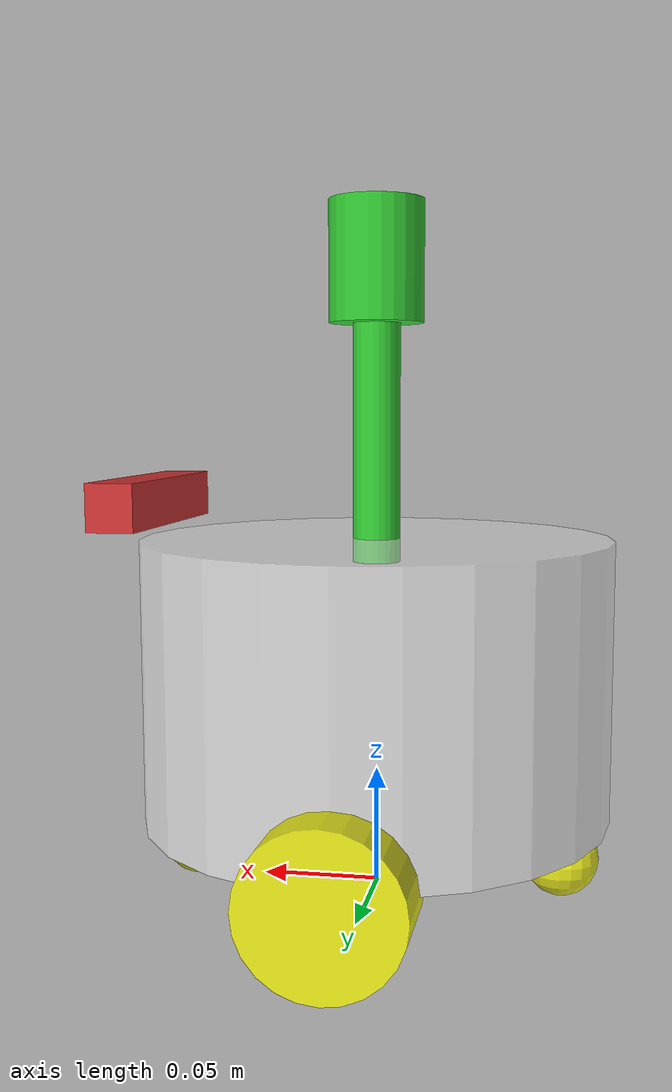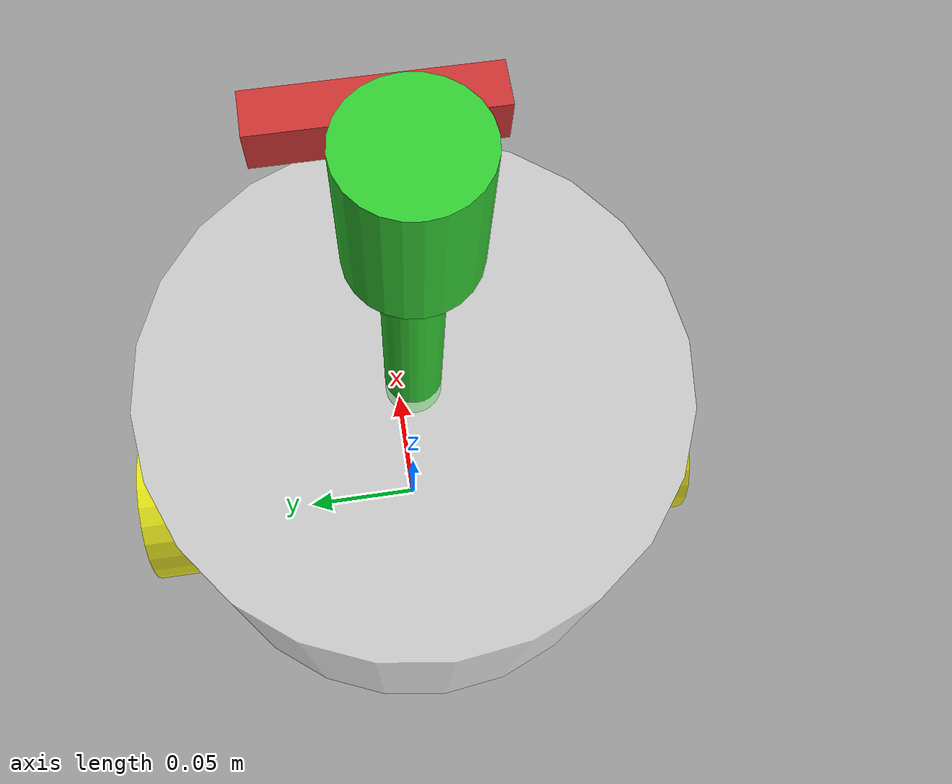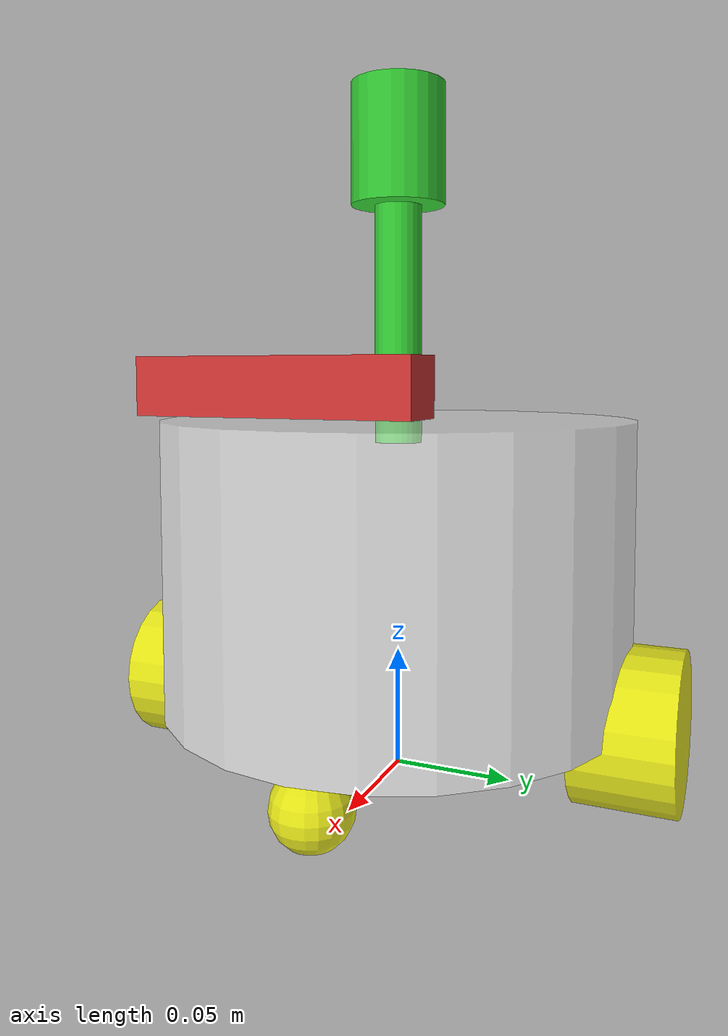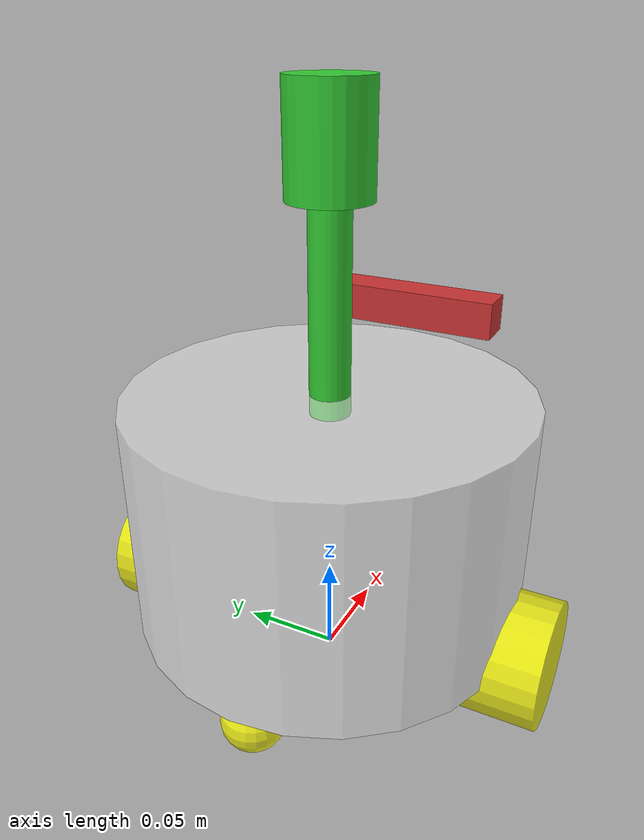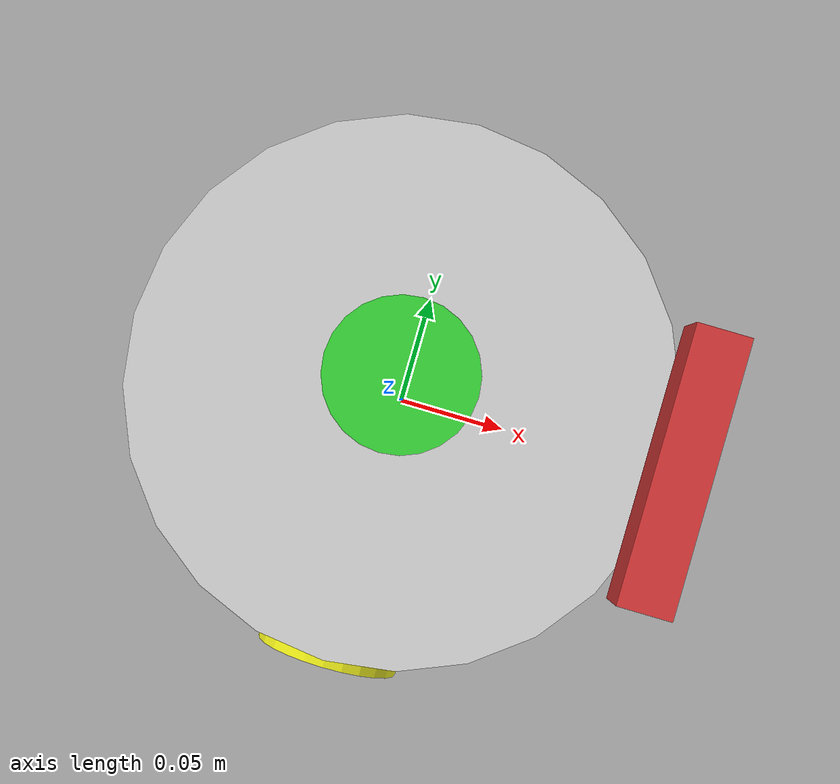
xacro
<?xml version='1.0'?>
<robot xmlns:xacro = "http://www.ros.org/wiki/xacro" name="fishbot">
    <!-- 基础部分 base_link-->
    <xacro:include filename="$(find fishbot_description)/urdf/fishbot/base.urdf.xacro"/>
    <!-- 传感器部分-->
    <xacro:include filename="$(find fishbot_description)/urdf/fishbot/sensor/imu.urdf.xacro"/>
    <xacro:include filename="$(find fishbot_description)/urdf/fishbot/sensor/camera.urdf.xacro"/>
    <xacro:include filename="$(find fishbot_description)/urdf/fishbot/sensor/laser.urdf.xacro"/>
    <!--执行器部分-->
    <xacro:include filename="$(find fishbot_description)/urdf/fishbot/actuator/wheel.urdf.xacro"/>
    <xacro:include filename="$(find fishbot_description)/urdf/fishbot/actuator/caster.urdf.xacro"/>
    <!-- 插件部分 -->
    <xacro:include filename="$(find fishbot_description)/urdf/fishbot/plugins/gazebo_control_plugin.xacro"/>
    <xacro:include filename="$(find fishbot_description)/urdf/fishbot/plugins/gazebo_sensor_plugin.xacro"/>
    <!-- 控制器部分 -->
    <xacro:include filename="$(find fishbot_description)/urdf/fishbot/fishbot.ros2_control.xacro"/>
    <!-- 机器人部分 -->
    <xacro:base_xacro length="0.12" radius="0.10" />
    <xacro:imu_xacro xyz ="0.0 0.0 0.02" />
    <xacro:camera_xacro xyz ="0.10 0.0 0.075" />
    <xacro:laser_xacro xyz ="0.0 0.0 0.10" />
    <xacro:wheel_xacro  wheel_name="left_wheel" xyz="0 0.10 -0.06" />
    <xacro:wheel_xacro  wheel_name="right_wheel" xyz="0 -0.10 -0.06" />
    <xacro:caster_xacro  caster_name="front_caster" xyz="0.08 0.0 -0.076" />
    <xacro:caster_xacro  caster_name="back_wheel"  xyz="-0.08 0.0 -0.076" />
    <!-- 不要再启用：该插件直接在 Gazebo 里给轮关节设速度，会把轮子锁在 0 速，
         与 ros2_control（effort / diff_drive 控制器）冲突。二选一，此处保留 ros2_control。 -->
    <xacro:gazebo_sensor_plugin />
    <!-- 控制器部分 -->
    <xacro:fishbot_ros2_control />
</robot>

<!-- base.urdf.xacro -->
<robot xmlns:xacro="http://www.ros.org/wiki/xacro">
    <xacro:include filename="$(find fishbot_description)/urdf/fishbot/common_inertial.xacro" />
    <xacro:macro name="base_xacro" params="length radius">
        <link name="base_footprint" />
        <link name="base_link">
            <!--部件外观描述-->
            <visual>
                <!--沿着自己几何中心的偏移和旋转-->
                <origin xyz="0.0 0.0 0.0" rpy="0.0 0.0 0.0" />
                <!--几何形状-->
                <geometry>
                    <!--圆柱体
                    radius 半径 0.10m 高度 length 0.12m-->
                    <cylinder radius="${radius}" length="${length}" />
                </geometry>
                <!--材质颜色-->
                <material name="white">
                    <color rgba="1.0 1.0 1.0 0.5" />
                </material>
            </visual>
            <collision>
                <!--沿着自己几何中心的偏移和旋转-->
                <origin xyz="0.0 0.0 0.0" rpy="0.0 0.0 0.0" />
                <!--几何形状-->
                <geometry>
                    <!--圆柱体
                    radius 半径 0.10m 高度 length 0.12m-->
                    <cylinder radius="${radius}" length="${length}" />
                </geometry>
                <!--材质颜色-->
                <material name="white">
                    <color rgba="1.0 1.0 1.0 0.5" />
                </material>
            </collision>
            <xacro:cylinder_inertia m="1.0" r="${radius}" h = "${length}"/>
        </link>
        <joint name="joint_name" type="fixed">
            <origin xyz="0.0 0.0 ${length/2.0+0.032-0.001}" rpy="0.0 0.0 0.0" />
            <parent link="base_footprint" />
            <child link="base_link" />
        </joint>
    </xacro:macro>
</robot>

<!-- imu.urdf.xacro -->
<robot xmlns:xacro = "http://www.ros.org/wiki/xacro">
    <xacro:include filename="$(find fishbot_description)/urdf/fishbot/common_inertial.xacro" />
    <xacro:macro name="imu_xacro" params="xyz">
        <!--机器人的IMU部件，惯性测量单元传感器-->
        <link name="imu_link">
            <!--部件外观描述-->
            <visual>
                <!--沿着自己几何中心的偏移和旋转-->
                <origin xyz="0.0 0.0 0.0" rpy="0.0 0.0 0.0"/>
                <!--几何形状-->
                <geometry>
                    <box size="0.02 0.02 0.02"/>
                </geometry>
                <!--材质颜色-->
                <material name="black">
                    <color rgba="0.0 0.0 0.0 0.5"/>
                </material>
            </visual>
            <collision>
                <!--沿着自己几何中心的偏移和旋转-->
                <origin xyz="0.0 0.0 0.0" rpy="0.0 0.0 0.0"/>
                <!--几何形状-->
                <geometry>
                    <box size="0.02 0.02 0.02"/>
                </geometry>
                <!--材质颜色-->
                <material name="black">
                    <color rgba="0.0 0.0 0.0 0.5"/>
                </material>
            </collision>
            <xacro:box_inertia m="0.015" w="0.02" h="0.02" d="0.02"/>
        </link>
        <!--机器人关节，用于组合机器人的部件-->
        <joint name="imu_joint" type="fixed">
            <parent link="base_link" />
            <child link="imu_link" />
            <origin xyz="${xyz}" rpy="0.0 0.0 0.0" />
        </joint>
    </xacro:macro>
</robot>

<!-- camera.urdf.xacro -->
<robot xmlns:xacro = "http://www.ros.org/wiki/xacro">
    <xacro:include filename="$(find fishbot_description)/urdf/fishbot/common_inertial.xacro" />
    <xacro:macro name="camera_xacro" params="xyz">
        <!--机器人的IMU部件，惯性测量单元传感器-->
        <link name="camera_link">
            <!--部件外观描述-->
            <visual>
                <!--沿着自己几何中心的偏移和旋转-->
                <origin xyz="0.0 0.0 0.0" rpy="0.0 0.0 0.0"/>
                <!--几何形状-->
                <geometry>
                    <box size="0.02 0.10 0.02"/>
                </geometry>
                <!--材质颜色-->
                <material name="red">
                    <color rgba="0.8 0.2 0.2 1.0"/>
                </material>
            </visual>
            <collision>
                <!--沿着自己几何中心的偏移和旋转-->
                <origin xyz="0.0 0.0 0.0" rpy="0.0 0.0 0.0"/>
                <!--几何形状-->
                <geometry>
                    <box size="0.02 0.10 0.02"/>
                </geometry>
                <!--材质颜色-->
                <material name="red">
                    <color rgba="0.8 0.2 0.2 1.0"/>
                </material>
            </collision>
            <xacro:box_inertia m="0.05" w="0.02" h="0.10" d="0.02"/>
        </link>

         <link name="camera_optical_link">
            <!--部件外观描述-->
        </link>
        <!--机器人关节，用于组合机器人的部件-->
        <joint name="camera_joint" type="fixed">
            <parent link="base_link" />
            <child link="camera_link" />
            <origin xyz="${xyz}" rpy="0.0 0.0 0.0" />
        </joint>
        <joint name="camera_optical_joint" type="fixed">
            <parent link="camera_link" />
            <child link="camera_optical_link" />
            <origin xyz="0.0 0.0 0.0" rpy="${-pi/2} 0.0 ${-pi/2}" />
        </joint>
    </xacro:macro>
</robot>

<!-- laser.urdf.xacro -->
<robot xmlns:xacro = "http://www.ros.org/wiki/xacro">
    <xacro:include filename="$(find fishbot_description)/urdf/fishbot/common_inertial.xacro" />
    <xacro:macro name="laser_xacro" params="xyz">
        <!-- 雷达支撑杆-->
        <link name="laser_cylinder_link">
            <!--部件外观描述-->
            <visual>
                <!--沿着自己几何中心的偏移和旋转-->
                <origin xyz="0.0 0.0 0.0" rpy="0.0 0.0 0.0"/>
                <!--几何形状-->
                <geometry>
                    <cylinder radius="0.01" length="0.10"/>
                </geometry>
                <!--材质颜色-->
                <material name="green">
                    <color rgba="0.2 0.8 0.2 1.0"/>
                </material>
            </visual>
            <collision>
                <!--沿着自己几何中心的偏移和旋转-->
                <origin xyz="0.0 0.0 0.0" rpy="0.0 0.0 0.0"/>
                <!--几何形状-->
                <geometry>
                    <cylinder radius="0.01" length="0.10"/>
                </geometry>
                <!--材质颜色-->
                <material name="green">
                    <color rgba="0.2 0.8 0.2 1.0"/>
                </material>
            </collision>
            <xacro:cylinder_inertia m="0.1" r="0.01" h="0.10"/>
        </link>
        <!--机器人的IMU部件，惯性测量单元传感器-->
        <link name="laser_link">
            <!--部件外观描述-->
            <visual>
                <!--沿着自己几何中心的偏移和旋转-->
                <origin rpy="0.0 0.0 0.0" xyz="0.0 0.0 0.0"/>
                <!--几何形状-->
                <geometry>
                    <cylinder radius="0.02" length="0.05"/>
                </geometry>
                <!--材质颜色-->
                <material name="green">
                    <color rgba="0.2 0.8 0.2 1.0"/>
                </material>
            </visual>
            <collision>
                <!--沿着自己几何中心的偏移和旋转-->
                <origin rpy="0.0 0.0 0.0" xyz="0.0 0.0 0.0"/>
                <!--几何形状-->
                <geometry>
                    <cylinder radius="0.02" length="0.05"/>
                </geometry>
                <!--材质颜色-->
                <material name="green">
                    <color rgba="0.2 0.8 0.2 1.0"/>
                </material>
            </collision>
            <xacro:cylinder_inertia m="0.15" r="0.02" h="0.05"/>
        </link>
        <!--机器人关节，用于组合机器人的部件-->
        <joint name="laser_joint" type="fixed">
            <parent link="laser_cylinder_link" />
            <child link="laser_link" />
            <origin xyz="0.0 0.0 0.075" rpy="0.0 0.0 0.0" />
        </joint>
        <joint name="laser_cylinder_joint" type="fixed">
            <parent link="base_link" />
            <child link="laser_cylinder_link" />
            <origin xyz="${xyz}" rpy="0.0 0.0 0.0" />
        </joint>
        <gazebo reference="laser_cylinder_link">
            <material>Gazebo/Black</material>
        </gazebo>
        <gazebo reference="laser_link">
            <material>Gazebo/Black</material>
        </gazebo>
    </xacro:macro>
</robot>

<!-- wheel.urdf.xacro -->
<robot xmlns:xacro = "http://www.ros.org/wiki/xacro">
    <xacro:include filename="$(find fishbot_description)/urdf/fishbot/common_inertial.xacro" />
    <xacro:macro name="wheel_xacro" params=" wheel_name  xyz">
        <link name="${wheel_name}_link">
        <!--部件外观描述-->
        <visual>
            <!--沿着自己几何中心的偏移和旋转-->
            <origin xyz="0.0 0.0 0.0" rpy="1.57079 0.0 0.0"/>
            <!--几何形状-->
            <geometry>
                <!--圆柱体 radius 半径 0.10m 高度 length 0.12m-->
                <cylinder radius="0.032" length="0.04"/>
            </geometry>
            <!--材质颜色-->
            <material name="yellow">
                <color rgba="1.0 1.0 0.0 0.8"/>
            </material>
        </visual>
        <collision>
            <!--沿着自己几何中心的偏移和旋转-->
            <origin xyz="0.0 0.0 0.0" rpy="1.57079 0.0 0.0"/>
            <!--几何形状-->
            <geometry>
                <!--圆柱体 radius 半径 0.10m 高度 length 0.12m-->
                <cylinder radius="0.032" length="0.04"/>
            </geometry>
            <!--材质颜色-->
            <material name="yellow">
                <color rgba="1.0 1.0 0.0 0.8"/>
            </material>
        </collision>
            <xacro:cylinder_inertia m="0.1" r="0.032" h="0.04"/>
        </link>
        <!--机器人关节，用于组合机器人的部件-->
        <joint name="${wheel_name}_joint" type="continuous">
            <parent link="base_link" />
            <child link="${wheel_name}_link" />
            <origin xyz="${xyz}" rpy="0.0 0.0 0.0" />
            <axis xyz="0 1 0"/>
        </joint>
    </xacro:macro>
    <!-- 万向轮（尸体自由度，固定球） -->
    <xacro:macro name="caster_xacro" params="caster_name xyz">
        <link name="${caster_name}_link">
            <visual>
                <origin xyz="0.0 0.0 0.0" rpy="0.0 0.0 0.0" />
                <geometry>
                    <sphere radius="0.019"/>
                </geometry>
                <material name="gray">
                    <color rgba="0.5 0.5 0.5 1.0"/>
                </material>
            </visual>
            <collision>
                <origin xyz="0.0 0.0 0.0" rpy="0.0 0.0 0.0" />
                <geometry>
                    <sphere radius="0.019"/>
                </geometry>
                <material name="gray">
                    <color rgba="0.5 0.5 0.5 1.0"/>
                </material>
            </collision>
            <xacro:sphere_inertia m="0.05" r="0.019"/>
        </link>
        <joint name="${caster_name}_joint" type="fixed">
            <parent link="base_link" />
            <child link="${caster_name}_link" />
            <origin xyz="${xyz}" rpy="0.0 0.0 0.0" />
        </joint>
        <gazebo reference="${wheel_name}_link">
            <mu1 value="20.0"/>
            <mu2 value="20.0"/>
            <kp value="1000000000.0"/>
            <kd value="20.0"/>
        </gazebo>
    </xacro:macro>
</robot>

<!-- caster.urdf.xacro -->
<robot xmlns:xacro = "http://www.ros.org/wiki/xacro">
    <xacro:include filename="$(find fishbot_description)/urdf/fishbot/common_inertial.xacro" />
    <xacro:macro name="caster_xacro" params=" caster_name  xyz">
        <link name="${caster_name}_link">
        <!--部件外观描述-->
        <visual>
            <!--沿着自己几何中心的偏移和旋转-->
            <origin xyz="0.0 0.0 0.0" rpy="0.0 0.0 0.0"/>
            <!--几何形状-->
            <geometry>
                <sphere radius="0.016"/>
            </geometry>
            <!--材质颜色-->
            <material name="yellow">
                <color rgba="1.0 1.0 0.0 0.8"/>
            </material>
        </visual>
        <collision>
            <!--沿着自己几何中心的偏移和旋转-->
            <origin xyz="0.0 0.0 0.0" rpy="0.0 0.0 0.0"/>
            <!--几何形状-->
            <geometry>
                <sphere radius="0.016"/>
            </geometry>
            <!--材质颜色-->
            <material name="yellow">
                <color rgba="1.0 1.0 0.0 0.8"/>
            </material>
        </collision>
            <xacro:sphere_inertia m="0.05" r="0.016"/>
        </link>
        <!--机器人关节，用于组合机器人的部件-->
        <joint name="${caster_name}_joint" type="fixed">
            <parent link="base_link" />
            <child link="${caster_name}_link" />
            <origin xyz="${xyz}" rpy="0.0 0.0 0.0" />
        </joint>
        <gazebo reference="${caster_name}_link">
            <mu1 value="0.0"/>
            <mu2 value="0.0"/>
            <kp value="1000000000.0"/>
            <kd value="1.0"/>
        </gazebo>
    </xacro:macro>
</robot>
